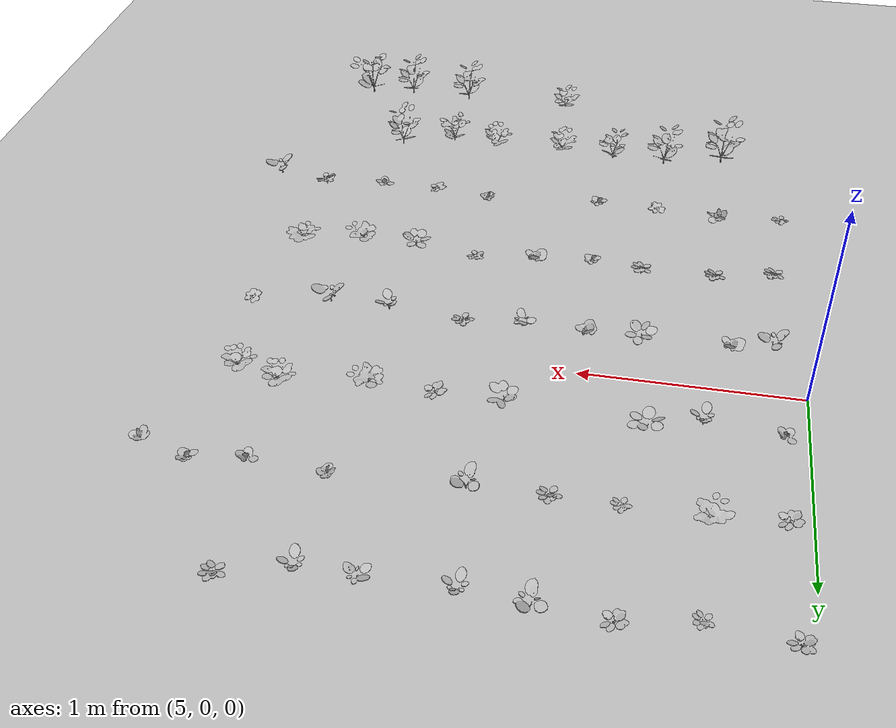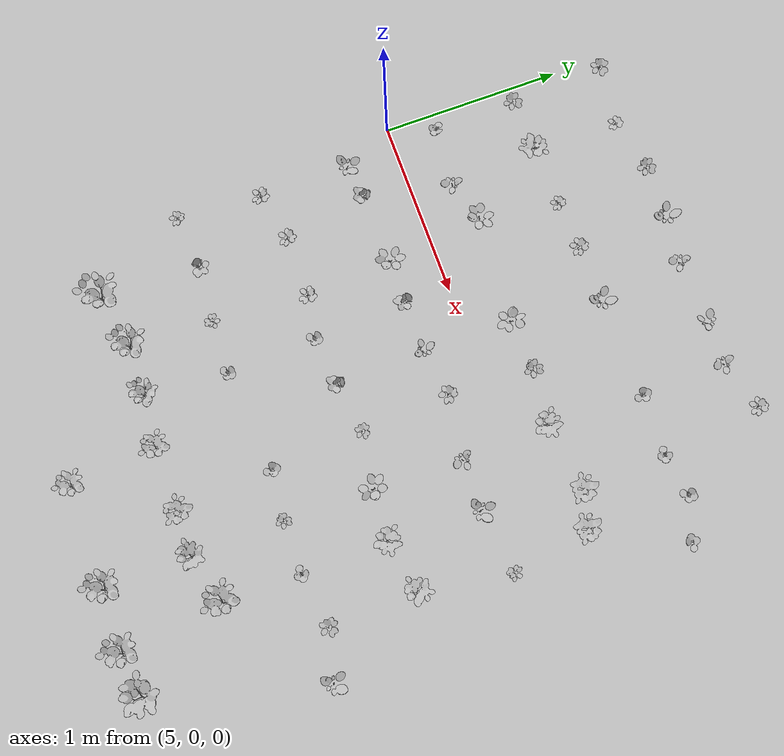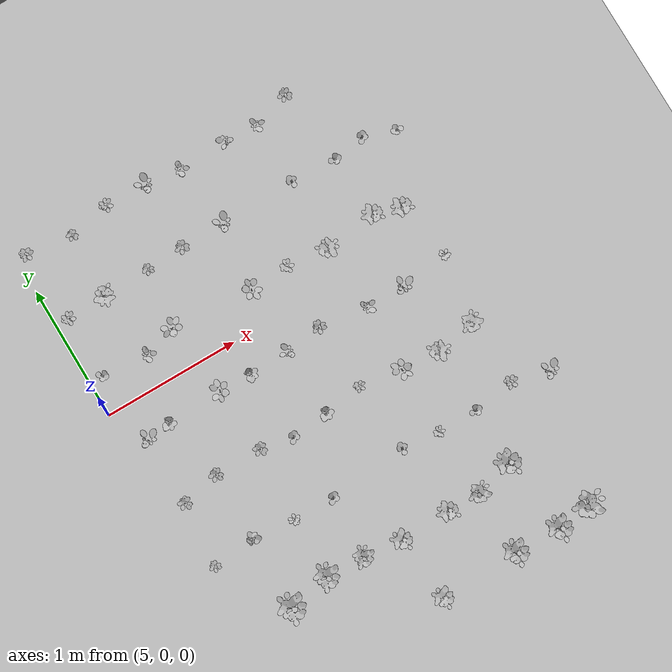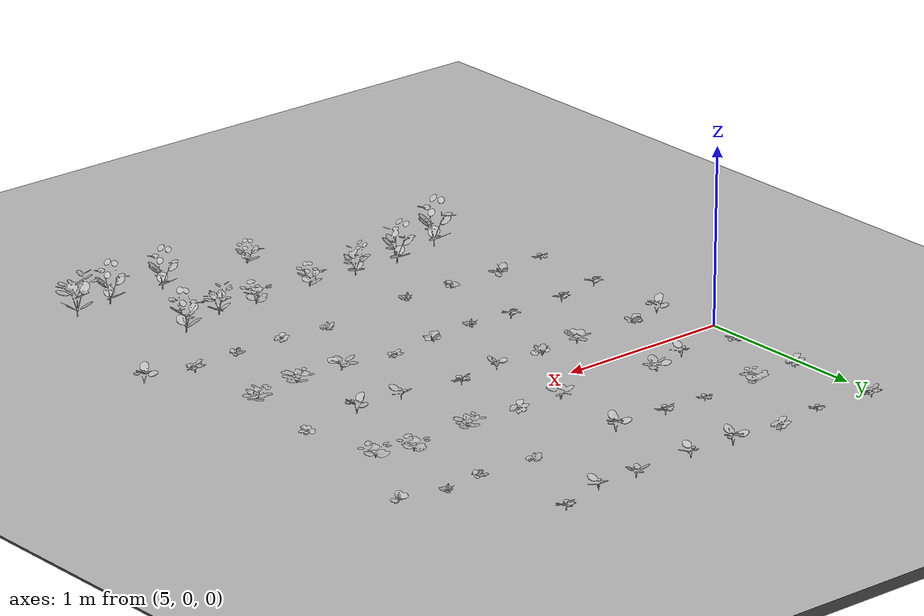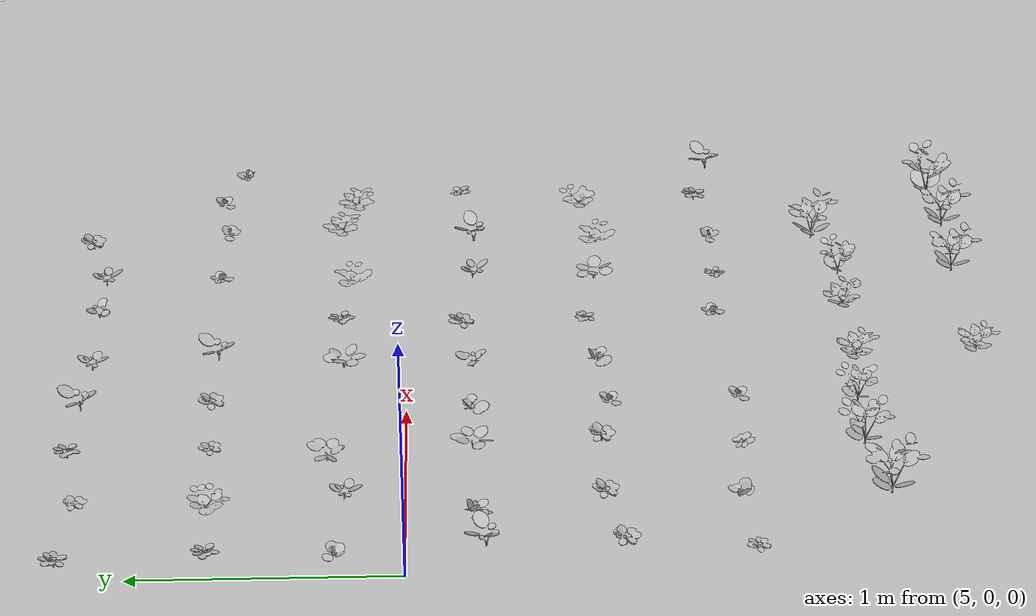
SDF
<sdf version="1.7">
 <world name="default">
  <model name="ground_plane">
   <static>1</static>
   <link name="link">
    <collision name="collision">
     <geometry><plane><normal>0 0 1</normal><size>100 100</size></plane></geometry>
     <surface>
      <contact><collide_bitmask>65535</collide_bitmask></contact>
      <friction><ode><mu>100</mu><mu2>50</mu2></ode></friction>
     </surface>
    </collision>
    <visual name="visual">
     <cast_shadows>0</cast_shadows>
     <geometry><plane><normal>0 0 1</normal><size>100 100</size></plane></geometry>
     <material>
      <ambient>0.2 0.2 0.2 1.0</ambient>
      <diffuse>0.2 0.2 0.2 1.0</diffuse>
      <specular>0.2 0.2 0.2 1.0</specular>
      <emissive>0.2 0.2 0.2 1.0</emissive>
     </material>
    </visual>
   </link>
  </model>
  <model name="ground">
   <pose>5 -0.5 0.01  3.141592654 0 0</pose>
   <static>true</static>
   <link name="body">
    <visual name="visual">
     <cast_shadows>0</cast_shadows>
     <geometry>
      <mesh><uri>file:///home/ifcosta/final_ws/src/cnn_line/worlds/models/ground.obj</uri></mesh>
     </geometry>
    </visual>
   </link>
  </model>
  <model name="plt_17">
   <pose>5.1 -1.27 0.0129 0.0 0.0 -1.016</pose>
   <static>true</static>
   <link name="body">
    <visual name="visual">
     <geometry>
      <mesh><uri>file:///home/ifcosta/final_ws/src/cnn_line/worlds/models/plant4.obj</uri></mesh>
     </geometry>
    </visual>
   </link>
  </model>
  <model name="plt_18">
   <pose>5.41 -1.24 0.0167 0.0 0.0 1.5161</pose>
   <static>true</static>
   <link name="body">
    <visual name="visual">
     <geometry>
      <mesh><uri>file:///home/ifcosta/final_ws/src/cnn_line/worlds/models/plant7.obj</uri></mesh>
     </geometry>
    </visual>
   </link>
  </model>
  <model name="plt_19">
   <pose>5.73 -1.27 0.012 0.0 0.0 2.2171</pose>
   <static>true</static>
   <link name="body">
    <visual name="visual">
     <geometry>
      <mesh><uri>file:///home/ifcosta/final_ws/src/cnn_line/worlds/models/plant4.obj</uri></mesh>
     </geometry>
    </visual>
   </link>
  </model>
  <model name="plt_20">
   <pose>6.03 -1.28 0.0152 0.0 0.0 0.20169</pose>
   <static>true</static>
   <link name="body">
    <visual name="visual">
     <geometry>
      <mesh><uri>file:///home/ifcosta/final_ws/src/cnn_line/worlds/models/plant6.obj</uri></mesh>
     </geometry>
    </visual>
   </link>
  </model>
  <model name="plt_22">
   <pose>6.61 -1.23 0.0153 0.0 0.0 1.0452</pose>
   <static>true</static>
   <link name="body">
    <visual name="visual">
     <geometry>
      <mesh><uri>file:///home/ifcosta/final_ws/src/cnn_line/worlds/models/plant6.obj</uri></mesh>
     </geometry>
    </visual>
   </link>
  </model>
  <model name="plt_23">
   <pose>6.89 -1.26 0.0155 0.0 0.0 0.58323</pose>
   <static>true</static>
   <link name="body">
    <visual name="visual">
     <geometry>
      <mesh><uri>file:///home/ifcosta/final_ws/src/cnn_line/worlds/models/plant4.obj</uri></mesh>
     </geometry>
    </visual>
   </link>
  </model>
  <model name="plt_24">
   <pose>7.18 -1.26 0.0155 0.0 0.0 -0.44791</pose>
   <static>true</static>
   <link name="body">
    <visual name="visual">
     <geometry>
      <mesh><uri>file:///home/ifcosta/final_ws/src/cnn_line/worlds/models/plant6.obj</uri></mesh>
     </geometry>
    </visual>
   </link>
  </model>
  <model name="plt_25">
   <pose>7.49 -1.22 0.0176 0.0 0.0 -0.2236</pose>
   <static>true</static>
   <link name="body">
    <visual name="visual">
     <geometry>
      <mesh><uri>file:///home/ifcosta/final_ws/src/cnn_line/worlds/models/plant5.obj</uri></mesh>
     </geometry>
    </visual>
   </link>
  </model>
  <model name="plt_26">
   <pose>7.75 -1.27 0.0115 0.0 0.0 0.39319</pose>
   <static>true</static>
   <link name="body">
    <visual name="visual">
     <geometry>
      <mesh><uri>file:///home/ifcosta/final_ws/src/cnn_line/worlds/models/plant3.obj</uri></mesh>
     </geometry>
    </visual>
   </link>
  </model>
  <model name="plt_51">
   <pose>5.14 -0.796 0.0164 0.0 0.0 -1.6176</pose>
   <static>true</static>
   <link name="body">
    <visual name="visual">
     <geometry>
      <mesh><uri>file:///home/ifcosta/final_ws/src/cnn_line/worlds/models/plant5.obj</uri></mesh>
     </geometry>
    </visual>
   </link>
  </model>
  <model name="plt_52">
   <pose>5.42 -0.737 0.0171 0.0 0.0 -1.427</pose>
   <static>true</static>
   <link name="body">
    <visual name="visual">
     <geometry>
      <mesh><uri>file:///home/ifcosta/final_ws/src/cnn_line/worlds/models/plant5.obj</uri></mesh>
     </geometry>
    </visual>
   </link>
  </model>
  <model name="plt_53">
   <pose>5.77 -0.738 0.0141 0.0 0.0 -1.6843</pose>
   <static>true</static>
   <link name="body">
    <visual name="visual">
     <geometry>
      <mesh><uri>file:///home/ifcosta/final_ws/src/cnn_line/worlds/models/plant5.obj</uri></mesh>
     </geometry>
    </visual>
   </link>
  </model>
  <model name="plt_54">
   <pose>6.01 -0.782 0.0155 0.0 0.0 0.36197</pose>
   <static>true</static>
   <link name="body">
    <visual name="visual">
     <geometry>
      <mesh><uri>file:///home/ifcosta/final_ws/src/cnn_line/worlds/models/plant6.obj</uri></mesh>
     </geometry>
    </visual>
   </link>
  </model>
  <model name="plt_55">
   <pose>6.29 -0.748 0.015 0.0 0.0 -0.42849</pose>
   <static>true</static>
   <link name="body">
    <visual name="visual">
     <geometry>
      <mesh><uri>file:///home/ifcosta/final_ws/src/cnn_line/worlds/models/plant7.obj</uri></mesh>
     </geometry>
    </visual>
   </link>
  </model>
  <model name="plt_56">
   <pose>6.58 -0.712 0.0156 0.0 0.0 -0.15389</pose>
   <static>true</static>
   <link name="body">
    <visual name="visual">
     <geometry>
      <mesh><uri>file:///home/ifcosta/final_ws/src/cnn_line/worlds/models/plant4.obj</uri></mesh>
     </geometry>
    </visual>
   </link>
  </model>
  <model name="plt_57">
   <pose>6.9 -0.768 0.0161 0.0 0.0 -0.47939</pose>
   <static>true</static>
   <link name="body">
    <visual name="visual">
     <geometry>
      <mesh><uri>file:///home/ifcosta/final_ws/src/cnn_line/worlds/models/plant2.obj</uri></mesh>
     </geometry>
    </visual>
   </link>
  </model>
  <model name="plt_58">
   <pose>7.17 -0.783 0.016 0.0 0.0 -1.8267</pose>
   <static>true</static>
   <link name="body">
    <visual name="visual">
     <geometry>
      <mesh><uri>file:///home/ifcosta/final_ws/src/cnn_line/worlds/models/plant0.obj</uri></mesh>
     </geometry>
    </visual>
   </link>
  </model>
  <model name="plt_59">
   <pose>7.47 -0.731 0.0152 0.0 0.0 -0.64841</pose>
   <static>true</static>
   <link name="body">
    <visual name="visual">
     <geometry>
      <mesh><uri>file:///home/ifcosta/final_ws/src/cnn_line/worlds/models/plant0.obj</uri></mesh>
     </geometry>
    </visual>
   </link>
  </model>
  <model name="plt_85">
   <pose>5.14 -0.267 0.0163 0.0 0.0 0.084957</pose>
   <static>true</static>
   <link name="body">
    <visual name="visual">
     <geometry>
      <mesh><uri>file:///home/ifcosta/final_ws/src/cnn_line/worlds/models/plant3.obj</uri></mesh>
     </geometry>
    </visual>
   </link>
  </model>
  <model name="plt_86">
   <pose>5.33 -0.258 0.0139 0.0 0.0 -0.69965</pose>
   <static>true</static>
   <link name="body">
    <visual name="visual">
     <geometry>
      <mesh><uri>file:///home/ifcosta/final_ws/src/cnn_line/worlds/models/plant7.obj</uri></mesh>
     </geometry>
    </visual>
   </link>
  </model>
  <model name="plt_87">
   <pose>5.74 -0.26 0.0161 0.0 0.0 -1.2894</pose>
   <static>true</static>
   <link name="body">
    <visual name="visual">
     <geometry>
      <mesh><uri>file:///home/ifcosta/final_ws/src/cnn_line/worlds/models/plant2.obj</uri></mesh>
     </geometry>
    </visual>
   </link>
  </model>
  <model name="plt_88">
   <pose>5.98 -0.251 0.0138 0.0 0.0 0.051044</pose>
   <static>true</static>
   <link name="body">
    <visual name="visual">
     <geometry>
      <mesh><uri>file:///home/ifcosta/final_ws/src/cnn_line/worlds/models/plant7.obj</uri></mesh>
     </geometry>
    </visual>
   </link>
  </model>
  <model name="plt_89">
   <pose>6.28 -0.256 0.012 0.0 0.0 -1.7884</pose>
   <static>true</static>
   <link name="body">
    <visual name="visual">
     <geometry>
      <mesh><uri>file:///home/ifcosta/final_ws/src/cnn_line/worlds/models/plant1.obj</uri></mesh>
     </geometry>
    </visual>
   </link>
  </model>
  <model name="plt_90">
   <pose>6.55 -0.218 0.0124 0.0 0.0 -0.88424</pose>
   <static>true</static>
   <link name="body">
    <visual name="visual">
     <geometry>
      <mesh><uri>file:///home/ifcosta/final_ws/src/cnn_line/worlds/models/plant5.obj</uri></mesh>
     </geometry>
    </visual>
   </link>
  </model>
  <model name="plt_91">
   <pose>6.91 -0.267 0.0171 0.0 0.0 1.5979</pose>
   <static>true</static>
   <link name="body">
    <visual name="visual">
     <geometry>
      <mesh><uri>file:///home/ifcosta/final_ws/src/cnn_line/worlds/models/plant1.obj</uri></mesh>
     </geometry>
    </visual>
   </link>
  </model>
  <model name="plt_92">
   <pose>7.19 -0.25 0.016 0.0 0.0 -0.01928</pose>
   <static>true</static>
   <link name="body">
    <visual name="visual">
     <geometry>
      <mesh><uri>file:///home/ifcosta/final_ws/src/cnn_line/worlds/models/plant3.obj</uri></mesh>
     </geometry>
    </visual>
   </link>
  </model>
  <model name="plt_93">
   <pose>7.56 -0.223 0.0167 0.0 0.0 1.6038</pose>
   <static>true</static>
   <link name="body">
    <visual name="visual">
     <geometry>
      <mesh><uri>file:///home/ifcosta/final_ws/src/cnn_line/worlds/models/plant4.obj</uri></mesh>
     </geometry>
    </visual>
   </link>
  </model>
  <model name="plt_119">
   <pose>5.1 0.258 0.017 0.0 0.0 -1.3178</pose>
   <static>true</static>
   <link name="body">
    <visual name="visual">
     <geometry>
      <mesh><uri>file:///home/ifcosta/final_ws/src/cnn_line/worlds/models/plant6.obj</uri></mesh>
     </geometry>
    </visual>
   </link>
  </model>
  <model name="plt_120">
   <pose>5.44 0.225 0.0122 0.0 0.0 0.99126</pose>
   <static>true</static>
   <link name="body">
    <visual name="visual">
     <geometry>
      <mesh><uri>file:///home/ifcosta/final_ws/src/cnn_line/worlds/models/plant1.obj</uri></mesh>
     </geometry>
    </visual>
   </link>
  </model>
  <model name="plt_121">
   <pose>5.67 0.289 0.0162 0.0 0.0 -2.1772</pose>
   <static>true</static>
   <link name="body">
    <visual name="visual">
     <geometry>
      <mesh><uri>file:///home/ifcosta/final_ws/src/cnn_line/worlds/models/plant2.obj</uri></mesh>
     </geometry>
    </visual>
   </link>
  </model>
  <model name="plt_123">
   <pose>6.28 0.255 0.0147 0.0 0.0 2.1765</pose>
   <static>true</static>
   <link name="body">
    <visual name="visual">
     <geometry>
      <mesh><uri>file:///home/ifcosta/final_ws/src/cnn_line/worlds/models/plant2.obj</uri></mesh>
     </geometry>
    </visual>
   </link>
  </model>
  <model name="plt_124">
   <pose>6.58 0.262 0.0153 0.0 0.0 0.56331</pose>
   <static>true</static>
   <link name="body">
    <visual name="visual">
     <geometry>
      <mesh><uri>file:///home/ifcosta/final_ws/src/cnn_line/worlds/models/plant5.obj</uri></mesh>
     </geometry>
    </visual>
   </link>
  </model>
  <model name="plt_125">
   <pose>6.88 0.224 0.0126 0.0 0.0 -1.5615</pose>
   <static>true</static>
   <link name="body">
    <visual name="visual">
     <geometry>
      <mesh><uri>file:///home/ifcosta/final_ws/src/cnn_line/worlds/models/plant0.obj</uri></mesh>
     </geometry>
    </visual>
   </link>
  </model>
  <model name="plt_126">
   <pose>7.28 0.276 0.0137 0.0 0.0 1.28</pose>
   <static>true</static>
   <link name="body">
    <visual name="visual">
     <geometry>
      <mesh><uri>file:///home/ifcosta/final_ws/src/cnn_line/worlds/models/plant0.obj</uri></mesh>
     </geometry>
    </visual>
   </link>
  </model>
  <model name="plt_127">
   <pose>7.48 0.218 0.0137 0.0 0.0 1.5133</pose>
   <static>true</static>
   <link name="body">
    <visual name="visual">
     <geometry>
      <mesh><uri>file:///home/ifcosta/final_ws/src/cnn_line/worlds/models/plant0.obj</uri></mesh>
     </geometry>
    </visual>
   </link>
  </model>
  <model name="plt_153">
   <pose>5.1 0.715 0.0173 0.0 0.0 0.33544</pose>
   <static>true</static>
   <link name="body">
    <visual name="visual">
     <geometry>
      <mesh><uri>file:///home/ifcosta/final_ws/src/cnn_line/worlds/models/plant5.obj</uri></mesh>
     </geometry>
    </visual>
   </link>
  </model>
  <model name="plt_154">
   <pose>5.39 0.733 0.0154 0.0 0.0 2.8138</pose>
   <static>true</static>
   <link name="body">
    <visual name="visual">
     <geometry>
      <mesh><uri>file:///home/ifcosta/final_ws/src/cnn_line/worlds/models/plant0.obj</uri></mesh>
     </geometry>
    </visual>
   </link>
  </model>
  <model name="plt_155">
   <pose>5.74 0.735 0.0122 0.0 0.0 -1.1259</pose>
   <static>true</static>
   <link name="body">
    <visual name="visual">
     <geometry>
      <mesh><uri>file:///home/ifcosta/final_ws/src/cnn_line/worlds/models/plant4.obj</uri></mesh>
     </geometry>
    </visual>
   </link>
  </model>
  <model name="plt_156">
   <pose>6.02 0.745 0.0153 0.0 0.0 -1.1487</pose>
   <static>true</static>
   <link name="body">
    <visual name="visual">
     <geometry>
      <mesh><uri>file:///home/ifcosta/final_ws/src/cnn_line/worlds/models/plant5.obj</uri></mesh>
     </geometry>
    </visual>
   </link>
  </model>
  <model name="plt_157">
   <pose>6.33 0.754 0.0133 0.0 0.0 0.78262</pose>
   <static>true</static>
   <link name="body">
    <visual name="visual">
     <geometry>
      <mesh><uri>file:///home/ifcosta/final_ws/src/cnn_line/worlds/models/plant3.obj</uri></mesh>
     </geometry>
    </visual>
   </link>
  </model>
  <model name="plt_10157">
   <pose>6.33 -2.25 0.0133 0.0 0.0 0.55365</pose>
   <static>true</static>
   <link name="body">
    <visual name="visual">
     <geometry>
      <mesh><uri>file:///home/ifcosta/final_ws/src/cnn_line/worlds/models/plant10.obj</uri></mesh>
     </geometry>
    </visual>
   </link>
  </model>
  <model name="plt_159">
   <pose>6.91 0.761 0.0125 0.0 0.0 1.1952</pose>
   <static>true</static>
   <link name="body">
    <visual name="visual">
     <geometry>
      <mesh><uri>file:///home/ifcosta/final_ws/src/cnn_line/worlds/models/plant6.obj</uri></mesh>
     </geometry>
    </visual>
   </link>
  </model>
  <model name="plt_10159">
   <pose>6.91 -2.24 0.0125 0.0 0.0 0.36226</pose>
   <static>true</static>
   <link name="body">
    <visual name="visual">
     <geometry>
      <mesh><uri>file:///home/ifcosta/final_ws/src/cnn_line/worlds/models/plant12.obj</uri></mesh>
     </geometry>
    </visual>
   </link>
  </model>
  <model name="plt_160">
   <pose>7.25 0.746 0.016 0.0 0.0 -0.67496</pose>
   <static>true</static>
   <link name="body">
    <visual name="visual">
     <geometry>
      <mesh><uri>file:///home/ifcosta/final_ws/src/cnn_line/worlds/models/plant6.obj</uri></mesh>
     </geometry>
    </visual>
   </link>
  </model>
  <model name="plt_10160">
   <pose>7.25 -2.25 0.016 0.0 0.0 0.47243</pose>
   <static>true</static>
   <link name="body">
    <visual name="visual">
     <geometry>
      <mesh><uri>file:///home/ifcosta/final_ws/src/cnn_line/worlds/models/plant12.obj</uri></mesh>
     </geometry>
    </visual>
   </link>
  </model>
  <model name="plt_161">
   <pose>7.49 0.781 0.0172 0.0 0.0 0.35261</pose>
   <static>true</static>
   <link name="body">
    <visual name="visual">
     <geometry>
      <mesh><uri>file:///home/ifcosta/final_ws/src/cnn_line/worlds/models/plant6.obj</uri></mesh>
     </geometry>
    </visual>
   </link>
  </model>
  <model name="plt_10161">
   <pose>7.49 -2.22 0.0172 0.0 0.0 -1.2611</pose>
   <static>true</static>
   <link name="body">
    <visual name="visual">
     <geometry>
      <mesh><uri>file:///home/ifcosta/final_ws/src/cnn_line/worlds/models/plant13.obj</uri></mesh>
     </geometry>
    </visual>
   </link>
  </model>
  <model name="plt_162">
   <pose>7.73 0.701 0.0115 0.0 0.0 2.5206</pose>
   <static>true</static>
   <link name="body">
    <visual name="visual">
     <geometry>
      <mesh><uri>file:///home/ifcosta/final_ws/src/cnn_line/worlds/models/plant6.obj</uri></mesh>
     </geometry>
    </visual>
   </link>
  </model>
  <model name="plt_187">
   <pose>5.07 1.25 0.0149 0.0 0.0 -0.2996</pose>
   <static>true</static>
   <link name="body">
    <visual name="visual">
     <geometry>
      <mesh><uri>file:///home/ifcosta/final_ws/src/cnn_line/worlds/models/plant5.obj</uri></mesh>
     </geometry>
    </visual>
   </link>
  </model>
  <model name="plt_188">
   <pose>5.41 1.21 0.017 0.0 0.0 -1.471</pose>
   <static>true</static>
   <link name="body">
    <visual name="visual">
     <geometry>
      <mesh><uri>file:///home/ifcosta/final_ws/src/cnn_line/worlds/models/plant4.obj</uri></mesh>
     </geometry>
    </visual>
   </link>
  </model>
  <model name="plt_10188">
   <pose>5.41 -1.79 0.017 0.0 0.0 0.27218</pose>
   <static>true</static>
   <link name="body">
    <visual name="visual">
     <geometry>
      <mesh><uri>file:///home/ifcosta/final_ws/src/cnn_line/worlds/models/plant13.obj</uri></mesh>
     </geometry>
    </visual>
   </link>
  </model>
  <model name="plt_189">
   <pose>5.72 1.27 0.0153 0.0 0.0 0.26558</pose>
   <static>true</static>
   <link name="body">
    <visual name="visual">
     <geometry>
      <mesh><uri>file:///home/ifcosta/final_ws/src/cnn_line/worlds/models/plant5.obj</uri></mesh>
     </geometry>
    </visual>
   </link>
  </model>
  <model name="plt_10189">
   <pose>5.72 -1.73 0.0153 0.0 0.0 0.0033979</pose>
   <static>true</static>
   <link name="body">
    <visual name="visual">
     <geometry>
      <mesh><uri>file:///home/ifcosta/final_ws/src/cnn_line/worlds/models/plant12.obj</uri></mesh>
     </geometry>
    </visual>
   </link>
  </model>
  <model name="plt_190">
   <pose>6.0 1.26 0.0149 0.0 0.0 1.0047</pose>
   <static>true</static>
   <link name="body">
    <visual name="visual">
     <geometry>
      <mesh><uri>file:///home/ifcosta/final_ws/src/cnn_line/worlds/models/plant3.obj</uri></mesh>
     </geometry>
    </visual>
   </link>
  </model>
  <model name="plt_10190">
   <pose>6.0 -1.74 0.0149 0.0 0.0 -0.26449</pose>
   <static>true</static>
   <link name="body">
    <visual name="visual">
     <geometry>
      <mesh><uri>file:///home/ifcosta/final_ws/src/cnn_line/worlds/models/plant11.obj</uri></mesh>
     </geometry>
    </visual>
   </link>
  </model>
  <model name="plt_191">
   <pose>6.29 1.23 0.0168 0.0 0.0 0.95281</pose>
   <static>true</static>
   <link name="body">
    <visual name="visual">
     <geometry>
      <mesh><uri>file:///home/ifcosta/final_ws/src/cnn_line/worlds/models/plant1.obj</uri></mesh>
     </geometry>
    </visual>
   </link>
  </model>
  <model name="plt_10191">
   <pose>6.29 -1.77 0.0168 0.0 0.0 0.81616</pose>
   <static>true</static>
   <link name="body">
    <visual name="visual">
     <geometry>
      <mesh><uri>file:///home/ifcosta/final_ws/src/cnn_line/worlds/models/plant10.obj</uri></mesh>
     </geometry>
    </visual>
   </link>
  </model>
  <model name="plt_192">
   <pose>6.66 1.24 0.0149 0.0 0.0 -0.95956</pose>
   <static>true</static>
   <link name="body">
    <visual name="visual">
     <geometry>
      <mesh><uri>file:///home/ifcosta/final_ws/src/cnn_line/worlds/models/plant1.obj</uri></mesh>
     </geometry>
    </visual>
   </link>
  </model>
  <model name="plt_10192">
   <pose>6.66 -1.76 0.0149 0.0 0.0 1.2281</pose>
   <static>true</static>
   <link name="body">
    <visual name="visual">
     <geometry>
      <mesh><uri>file:///home/ifcosta/final_ws/src/cnn_line/worlds/models/plant10.obj</uri></mesh>
     </geometry>
    </visual>
   </link>
  </model>
  <model name="plt_193">
   <pose>6.9 1.23 0.013 0.0 0.0 1.2971</pose>
   <static>true</static>
   <link name="body">
    <visual name="visual">
     <geometry>
      <mesh><uri>file:///home/ifcosta/final_ws/src/cnn_line/worlds/models/plant1.obj</uri></mesh>
     </geometry>
    </visual>
   </link>
  </model>
  <model name="plt_10193">
   <pose>6.9 -1.77 0.013 0.0 0.0 -0.92953</pose>
   <static>true</static>
   <link name="body">
    <visual name="visual">
     <geometry>
      <mesh><uri>file:///home/ifcosta/final_ws/src/cnn_line/worlds/models/plant11.obj</uri></mesh>
     </geometry>
    </visual>
   </link>
  </model>
  <model name="plt_194">
   <pose>7.18 1.31 0.0126 0.0 0.0 -1.3676</pose>
   <static>true</static>
   <link name="body">
    <visual name="visual">
     <geometry>
      <mesh><uri>file:///home/ifcosta/final_ws/src/cnn_line/worlds/models/plant5.obj</uri></mesh>
     </geometry>
    </visual>
   </link>
  </model>
  <model name="plt_10194">
   <pose>7.18 -1.69 0.0126 0.0 0.0 0.85655</pose>
   <static>true</static>
   <link name="body">
    <visual name="visual">
     <geometry>
      <mesh><uri>file:///home/ifcosta/final_ws/src/cnn_line/worlds/models/plant12.obj</uri></mesh>
     </geometry>
    </visual>
   </link>
  </model>
 </world>
</sdf>
